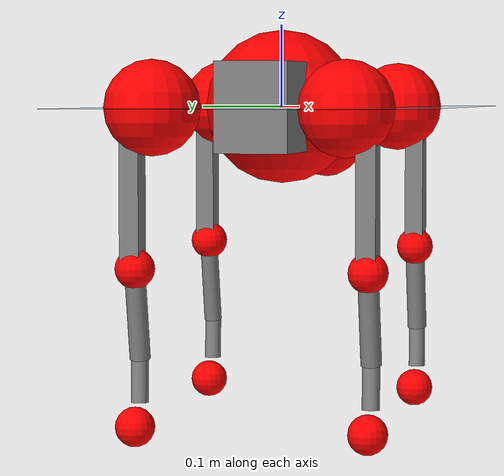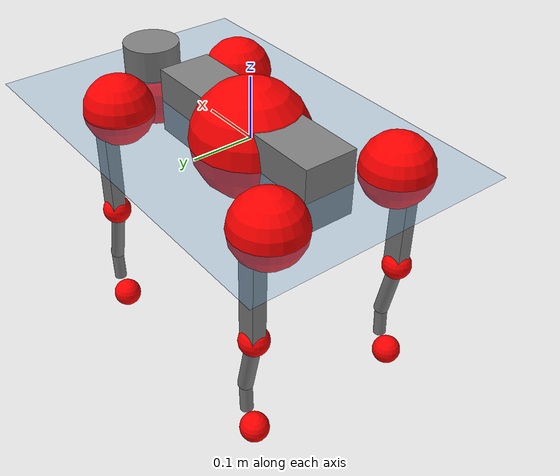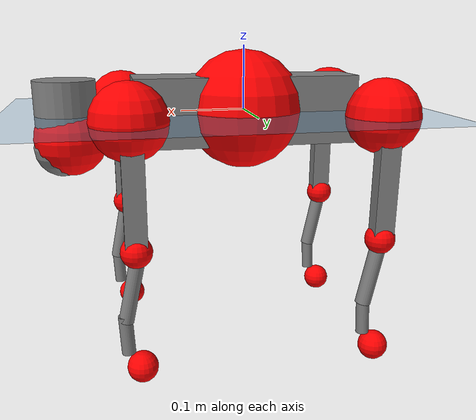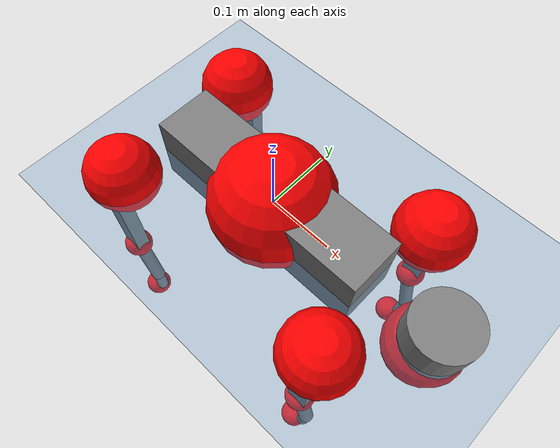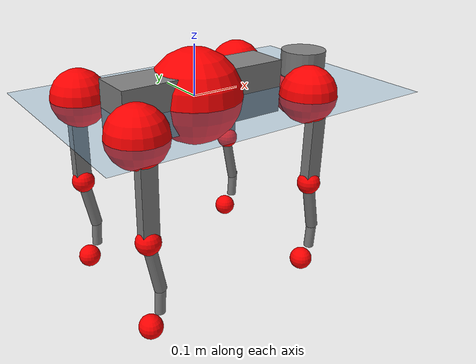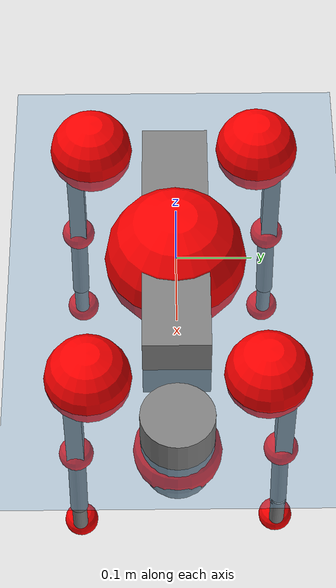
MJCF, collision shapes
<mujoco model="go2">
  <compiler angle="radian" assetdir="assets" balanceinertia="true" inertiafromgeom="false"/>

  <option timestep="0.005" density="1.2" viscosity="2e-05"/>

  <size nkey="1"/>

  <visual>
    <quality shadowsize="8192"/>
    <map shadowclip="0.5"/>
  </visual>

  <default>
    <default class="/">
      <geom contype="0" conaffinity="0" group="1" solref="-1000 -80"/>
      <site size="0.01 0.005 0.005" group="5"/>
      <general forcelimited="true" biastype="affine" gainprm="20" biasprm="0 -20 -0.5"/>
      <default class="go2">
        <joint armature="0.01" damping="0.01" frictionloss="0.2"/>
        <geom condim="1" margin="0.001"/>
        <default class="visual">
          <geom type="mesh" group="2"/>
        </default>
        <default class="collision">
          <geom group="3"/>
          <default class="foot">
            <geom size="0.022 0 0" condim="6" priority="1" friction="0.8 0.02 0.01" solimp="0.015 1 0.022"/>
          </default>
        </default>
        <default class="reward_collision_sphere">
          <geom group="5" rgba="1 0 0 1"/>
        </default>
      </default>
    </default>
  </default>

  <asset>
    <texture type="skybox" colorspace="auto" name="//unnamed_texture_0" builtin="gradient" rgb1="0.95 0.95 0.95" rgb2="0.95 0.95 0.95" width="100" height="600"/>
    <texture type="2d" colorspace="auto" name="texplane" builtin="checker" rgb1="0.345 0.575 0.748" rgb2="0.345 0.575 0.748" markrgb="1 1 1" width="512" height="512"/>
    <material name="MatPlane" class="/" texture="texplane" texuniform="true" texrepeat="2 2" specular="0.9"/>
    <material name="metal" class="/" rgba="0.9 0.95 0.95 1"/>
    <material name="black" class="/" rgba="0 0 0 1"/>
    <material name="white" class="/"/>
    <material name="gray" class="/" rgba="0.671705 0.692426 0.77427 1"/>
    <mesh name="base_0" class="/" file="base_0.obj"/>
    <mesh name="base_1" class="/" file="base_1.obj"/>
    <mesh name="base_2" class="/" file="base_2.obj"/>
    <mesh name="base_3" class="/" file="base_3.obj"/>
    <mesh name="base_4" class="/" file="base_4.obj"/>
    <mesh name="hip_0" class="/" file="hip_0.obj"/>
    <mesh name="hip_1" class="/" file="hip_1.obj"/>
    <mesh name="thigh_0" class="/" file="thigh_0.obj"/>
    <mesh name="thigh_1" class="/" file="thigh_1.obj"/>
    <mesh name="thigh_mirror_0" class="/" file="thigh_mirror_0.obj"/>
    <mesh name="thigh_mirror_1" class="/" file="thigh_mirror_1.obj"/>
    <mesh name="calf_0" class="/" file="calf_0.obj"/>
    <mesh name="calf_1" class="/" file="calf_1.obj"/>
    <mesh name="calf_mirror_0" class="/" file="calf_mirror_0.obj"/>
    <mesh name="calf_mirror_1" class="/" file="calf_mirror_1.obj"/>
    <mesh name="foot" class="/" file="foot.obj"/>
  </asset>

  <worldbody>
    <geom name="floor" class="/" size="100 100 0.125" type="plane" group="0" material="MatPlane"/>
    <light name="toplight_shadow" class="/" pos="0 0 5" dir="0.0990148 0.0990148 -0.990148" type="directional" ambient="0.04 0.04 0.04" diffuse="0.55 0.55 0.55" specular="0.12 0.12 0.12"/>
    <light name="toplight_fill" class="/" pos="0 0 5" dir="0.0990148 0.0990148 -0.990148" type="directional" castshadow="false" ambient="0.04 0.04 0.04" diffuse="0.3 0.3 0.3" specular="0.08 0.08 0.08"/>
    <body name="trunk" childclass="go2" pos="-0.000222983 -0.000622675 0.000440881" quat="1 1.07359e-06 -5.61811e-06 -1.4691e-05">
      <inertial pos="0.0195637 -0.00102792 -0.00457888" quat="-0.0105012 0.714777 -0.00685197 0.69924" mass="5.70278" diaginertia="0.093907 0.0873156 0.0119882"/>
      <joint name="//unnamed_joint_0" type="free" armature="0" damping="0" frictionloss="0"/>
      <geom name="//unnamed_geom_1" class="visual" material="black" mesh="base_0"/>
      <geom name="//unnamed_geom_2" class="visual" material="black" mesh="base_1"/>
      <geom name="//unnamed_geom_3" class="visual" material="black" mesh="base_2"/>
      <geom name="//unnamed_geom_4" class="visual" material="white" mesh="base_3"/>
      <geom name="//unnamed_geom_5" class="visual" material="gray" mesh="base_4"/>
      <geom name="trunk_1" class="collision" size="0.176519 0.0438717 0.0534906" type="box"/>
      <geom name="trunk_2" class="collision" size="0.0469216 0.0422294" pos="0.277186 0 0.00867557" type="cylinder"/>
      <geom name="trunk_3" class="collision" size="0.0441063" pos="0.284967 0 -0.0520534"/>
      <geom name="//unnamed_geom_9" class="reward_collision_sphere" size="0.0938431"/>
      <geom name="//unnamed_geom_10" class="reward_collision_sphere" size="0.0563059" pos="0.272323 0 -0.0390401"/>
      <site name="imu" pos="-0.0225733 -0.00310197 0.0336408" size="0.00938431"/>
      <camera name="track" pos="0 -1.95031 0" quat="0.707107 0.707107 0 0" mode="trackcom"/>
      <camera name="ego_camera" pos="0.303446 0 0.0390401" quat="-0.5 -0.5 0.5 0.5"/>
      <body name="FL_hip" pos="0.1874 0.0476845 0.00281054" quat="1 -0.000134824 -0.000144594 0.000385982">
        <inertial pos="-0.00554326 0.00201759 -0.000709979" quat="0.496519 0.497896 0.505146 0.500395" mass="0.558626" diaginertia="0.000768544 0.000523391 0.000237717"/>
        <joint name="FL_hip_joint" pos="0 0 0" axis="0.999991 0.000418037 0.00427426" stiffness="0.0115736" range="-1.00357 1.03301" armature="0.00937339" damping="0.000386944" frictionloss="0.18723"/>
        <geom name="//unnamed_geom_11" class="visual" material="metal" mesh="hip_0"/>
        <geom name="//unnamed_geom_12" class="visual" material="gray" mesh="hip_1"/>
        <geom name="//unnamed_geom_13" class="collision" size="0.0431678 0.0187686" pos="0 0.0780123 0" quat="0.707107 0.707107 0 0" type="cylinder"/>
        <geom name="//unnamed_geom_14" class="reward_collision_sphere" size="0.0563059" pos="0 0.0682608 0"/>
        <body name="FL_thigh" pos="-0.000959606 0.0950458 0.00229385" quat="1 -4.59276e-05 6.15231e-06 -7.07067e-05">
          <inertial pos="-0.00374306 -0.022 -0.0279318" quat="0.826572 0.0889106 -0.0206933 0.555379" mass="0.952831" diaginertia="0.00520508 0.00513948 0.000435497"/>
          <joint name="FL_thigh_joint" pos="0 0 0" axis="0.000601327 0.999953 0.00963628" stiffness="0.0054815" range="-1.58659 3.52797" armature="0.00981392" damping="0.00903261" frictionloss="0.1785"/>
          <geom name="//unnamed_geom_15" class="visual" material="metal" mesh="thigh_0"/>
          <geom name="//unnamed_geom_16" class="visual" material="gray" mesh="thigh_1"/>
          <geom name="//unnamed_geom_17" class="collision" size="0.0999429 0.0114958 0.0159533" pos="0 0 -0.0923949" quat="0.707107 0 0.707107 0" type="box"/>
          <body name="FL_calf" pos="-6.54242e-05 -0.00252019 -0.18395" quat="1 0.000133219 0.000328918 -9.73511e-05">
            <inertial pos="0.00608372 -0.000466162 -0.124387" quat="0.710016 0.0014492 -0.00398197 0.704172" mass="0.198662" diaginertia="0.00129189 0.00132432 2.55452e-05"/>
            <joint name="FL_calf_joint" pos="0 0 0" axis="-0.000683098 0.999963 -0.00853425" stiffness="0.00194101" range="-2.76486 -0.83615" armature="0.00958199" damping="0.00125211" frictionloss="0.189277"/>
            <geom name="//unnamed_geom_18" class="visual" material="gray" mesh="calf_0"/>
            <geom name="//unnamed_geom_19" class="visual" material="black" mesh="calf_1"/>
            <geom name="FL_calf0" class="collision" size="0.0112612 0.0563059" pos="0.00778066 0 -0.0520534" quat="0.994493 0 -0.104807 0" type="cylinder"/>
            <geom name="//unnamed_geom_21" class="collision" size="0.0103227 0.030499" pos="0.0194516 0 -0.128398" quat="0.999688 0 0.0249974 0" type="cylinder"/>
            <geom name="//unnamed_geom_22" class="visual" pos="0 0 -0.18479" quat="1 0 0 0" material="black" mesh="foot"/>
            <geom name="FL_foot" class="foot" size="0.0179505" pos="-0.00194516 0 -0.18479"/>
            <geom name="//unnamed_geom_24" class="reward_collision_sphere" size="0.0234608"/>
            <geom name="//unnamed_geom_25" class="reward_collision_sphere" size="0.0234608" pos="-0.00194516 0 -0.18479"/>
            <site name="FL_foot" class="foot" pos="-0.00194516 0 -0.18479" size="0.00938431"/>
          </body>
        </body>
      </body>
      <body name="FR_hip" pos="0.188359 -0.044751 -0.00107271" quat="1 -1.2971e-05 1.15156e-05 3.94276e-05">
        <inertial pos="-0.00436063 -0.00135171 -0.00113055" quat="0.498495 0.505648 0.499071 0.49674" mass="0.553712" diaginertia="0.000780331 0.000513159 0.00023938"/>
        <joint name="FR_hip_joint" pos="0 0 0" axis="0.999998 0.000815839 -0.0018001" stiffness="0.00682474" range="-1.04975 1.04525" armature="0.00901753" damping="0.0174985" frictionloss="0.178924"/>
        <geom name="//unnamed_geom_26" class="visual" pos="0 9.37336e-10 4.02043e-08" quat="4.63268e-05 1 0 0" material="metal" mesh="hip_0"/>
        <geom name="//unnamed_geom_27" class="visual" pos="0 1.51953e-09 -9.94405e-08" quat="4.63268e-05 1 0 0" material="gray" mesh="hip_1"/>
        <geom name="//unnamed_geom_28" class="collision" size="0.0431678 0.0187686" pos="0 -0.0780123 0" quat="0.707107 0.707107 0 0" type="cylinder"/>
        <geom name="//unnamed_geom_29" class="reward_collision_sphere" size="0.0563059" pos="0 -0.0682608 0"/>
        <body name="FR_thigh" pos="0.00247733 -0.0911591 0.00213259" quat="1 -0.000303151 -0.000315923 -0.000172725">
          <inertial pos="-0.00269028 0.0197406 -0.0283822" quat="0.553366 -0.0192292 0.0843382 0.828434" mass="0.966386" diaginertia="0.00526645 0.00521529 0.000442846"/>
          <joint name="FR_thigh_joint" pos="0 0 0" axis="-0.000789137 -0.999997 0.00221975" stiffness="0.00240113" range="-3.52891 1.57051" armature="0.00962467" damping="0.0118671" frictionloss="0.187807"/>
          <geom name="//unnamed_geom_30" class="visual" material="metal" mesh="thigh_mirror_0"/>
          <geom name="//unnamed_geom_31" class="visual" material="gray" mesh="thigh_mirror_1"/>
          <geom name="//unnamed_geom_32" class="collision" size="0.0999429 0.0114958 0.0159533" pos="0 0 -0.0923949" quat="0.707107 0 0.707107 0" type="box"/>
          <body name="FR_calf" pos="-0.00175094 0.000298829 -0.184454" quat="1 -0.000313264 0.000520024 0.000207754">
            <inertial pos="0.00504178 0.000703424 -0.123062" quat="0.703367 -0.00374484 0.0033061 0.710809" mass="0.200335" diaginertia="0.00129325 0.00128953 2.58323e-05"/>
            <joint name="FR_calf_joint" pos="0 0 0" axis="-0.00517127 -0.999941 -0.00952489" stiffness="0.00235493" range="0.84374 2.71911" armature="0.0101805" damping="0.0190689" frictionloss="0.176685"/>
            <geom name="//unnamed_geom_33" class="visual" material="gray" mesh="calf_mirror_0"/>
            <geom name="//unnamed_geom_34" class="visual" material="black" mesh="calf_mirror_1"/>
            <geom name="FR_calf0" class="collision" size="0.0121996 0.0563059" pos="0.00972582 0 -0.0520534" quat="0.995004 0 -0.0998334 0" type="cylinder"/>
            <geom name="//unnamed_geom_36" class="collision" size="0.0103227 0.030499" pos="0.0194516 0 -0.128398" quat="0.999688 0 0.0249974 0" type="cylinder"/>
            <geom name="//unnamed_geom_37" class="visual" pos="0 0 -0.18479" quat="1 0 0 0" material="black" mesh="foot"/>
            <geom name="FR_foot" class="foot" size="0.0217686" pos="-0.00194516 0 -0.18479"/>
            <geom name="//unnamed_geom_39" class="reward_collision_sphere" size="0.0234608"/>
            <geom name="//unnamed_geom_40" class="reward_collision_sphere" size="0.0234608" pos="-0.00194516 0 -0.18479"/>
            <site name="FR_foot" class="foot" pos="-0.00194516 0 -0.18479" size="0.00938431"/>
          </body>
        </body>
      </body>
      <body name="RL_hip" pos="-0.188019 0.0452771 -0.000350508" quat="1 1.00504e-05 -6.98782e-05 -3.15836e-05">
        <inertial pos="0.00537347 0.00136292 -0.00042889" quat="0.506737 0.495658 0.498603 0.498934" mass="0.54855" diaginertia="0.000759844 0.00051932 0.000232365"/>
        <joint name="RL_hip_joint" pos="0 0 0" axis="-0.999934 -0.000671881 0.0114392" stiffness="0.00508766" range="-1.0526 1.06673" armature="0.00931586" damping="0.00997826" frictionloss="0.188464"/>
        <geom name="//unnamed_geom_41" class="visual" pos="-9.14932e-10 0 -1.79348e-07" quat="4.63268e-05 0 1 0" material="metal" mesh="hip_0"/>
        <geom name="//unnamed_geom_42" class="visual" pos="-1.48321e-09 0 -1.59056e-07" quat="4.63268e-05 0 1 0" material="gray" mesh="hip_1"/>
        <geom name="//unnamed_geom_43" class="collision" size="0.0431678 0.0187686" pos="0 0.0780123 0" quat="0.707107 0.707107 0 0" type="cylinder"/>
        <geom name="//unnamed_geom_44" class="reward_collision_sphere" size="0.0563059" pos="0 0.0682608 0"/>
        <body name="RL_thigh" pos="0.000206382 0.09267 -0.00162172" quat="1 -1.87005e-05 -3.41809e-06 1.54738e-05">
          <inertial pos="-0.00358012 -0.0221479 -0.0302049" quat="0.829128 0.0836604 -0.0176712 0.552481" mass="0.966525" diaginertia="0.0051444 0.00502341 0.000424225"/>
          <joint name="RL_thigh_joint" pos="0 0 0" axis="0.0035147 0.999969 -0.00699695" range="-0.534158 4.52847" armature="0.00980312" damping="0.00306208" frictionloss="0.183589"/>
          <geom name="//unnamed_geom_45" class="visual" material="metal" mesh="thigh_0"/>
          <geom name="//unnamed_geom_46" class="visual" material="gray" mesh="thigh_1"/>
          <geom name="//unnamed_geom_47" class="collision" size="0.0999429 0.0114958 0.0159533" pos="0 0 -0.0923949" quat="0.707107 0 0.707107 0" type="box"/>
          <body name="RL_calf" pos="0.000117988 -0.00280447 -0.185664" quat="1 -0.000212405 -5.35544e-05 -2.38964e-05">
            <inertial pos="0.00573645 -0.000369396 -0.123074" quat="0.71067 0.00153599 -0.00449646 0.703509" mass="0.197348" diaginertia="0.00131041 0.00128293 2.59199e-05"/>
            <joint name="RL_calf_joint" pos="0 0 0" axis="0.00099793 0.999999 -0.000532715" range="-2.68008 -0.846822" armature="0.00923506" damping="0.00607123" frictionloss="0.189815"/>
            <geom name="//unnamed_geom_48" class="visual" material="gray" mesh="calf_0"/>
            <geom name="//unnamed_geom_49" class="visual" material="black" mesh="calf_1"/>
            <geom name="RL_calf0" class="collision" size="0.0121996 0.0563059" pos="0.00972582 0 -0.0520534" quat="0.995004 0 -0.0998334 0" type="cylinder"/>
            <geom name="//unnamed_geom_51" class="collision" size="0.0103227 0.030499" pos="0.0194516 0 -0.128398" quat="0.999688 0 0.0249974 0" type="cylinder"/>
            <geom name="//unnamed_geom_52" class="visual" pos="0 0 -0.18479" quat="1 0 0 0" material="black" mesh="foot"/>
            <geom name="RL_foot" class="foot" size="0.0170533" pos="-0.00194516 0 -0.18479"/>
            <geom name="//unnamed_geom_54" class="reward_collision_sphere" size="0.0234608"/>
            <geom name="//unnamed_geom_55" class="reward_collision_sphere" size="0.0234608" pos="-0.00194516 0 -0.18479"/>
            <site name="RL_foot" class="foot" pos="-0.00194516 0 -0.18479" size="0.00938431"/>
          </body>
        </body>
      </body>
      <body name="RR_hip" pos="-0.187877 -0.0466094 -0.00117183" quat="1 -0.000440938 -0.000318008 -5.33215e-05">
        <inertial pos="0.00500648 -0.000735464 0.000251925" quat="0.499269 0.495885 0.499482 0.505318" mass="0.555248" diaginertia="0.000768152 0.000515226 0.000239089"/>
        <joint name="RR_hip_joint" pos="0 0 0" axis="-0.999969 -0.000448472 0.00787125" range="-1.05797 1.01599" armature="0.00936188" damping="0.00593006" frictionloss="0.19261"/>
        <geom name="//unnamed_geom_56" class="visual" pos="9.15021e-10 9.37336e-10 -2.19552e-07" quat="2.14617e-09 4.63268e-05 4.63268e-05 -1" material="metal" mesh="hip_0"/>
        <geom name="//unnamed_geom_57" class="visual" pos="1.48299e-09 1.51953e-09 -5.96154e-08" quat="2.14617e-09 4.63268e-05 4.63268e-05 -1" material="gray" mesh="hip_1"/>
        <geom name="//unnamed_geom_58" class="collision" size="0.0431678 0.0187686" pos="0 -0.0780123 0" quat="0.707107 0.707107 0 0" type="cylinder"/>
        <geom name="//unnamed_geom_59" class="reward_collision_sphere" size="0.0563059" pos="0 -0.0682608 0"/>
        <body name="RR_thigh" pos="0.000326747 -0.0928476 -0.00072459" quat="1 -0.000259946 0.000496223 -0.000264555">
          <inertial pos="-0.00352552 0.020259 -0.0288178" quat="0.551269 -0.0201493 0.0850035 0.829742" mass="0.956792" diaginertia="0.00523466 0.00516281 0.00043413"/>
          <joint name="RR_thigh_joint" pos="0 0 0" axis="-0.00534861 -0.999972 -0.00519919" stiffness="0.00192735" range="-4.52958 0.51246" armature="0.00936295" damping="0.0158281" frictionloss="0.189898"/>
          <geom name="//unnamed_geom_60" class="visual" material="metal" mesh="thigh_mirror_0"/>
          <geom name="//unnamed_geom_61" class="visual" material="gray" mesh="thigh_mirror_1"/>
          <geom name="//unnamed_geom_62" class="collision" size="0.0999429 0.0114958 0.0159533" pos="0 0 -0.0923949" quat="0.707107 0 0.707107 0" type="box"/>
          <body name="RR_calf" pos="-0.00185734 -0.000773932 -0.186045" quat="1 -0.000139035 0.000264709 -0.000362089">
            <inertial pos="0.00817734 0.000754053 -0.12268" quat="0.703454 -0.00129668 -0.00226891 0.710736" mass="0.198696" diaginertia="0.00132065 0.0012992 2.60784e-05"/>
            <joint name="RR_calf_joint" pos="0 0 0" axis="-0.00436486 -0.999964 0.00721356" range="0.822488 2.76128" armature="0.00867223" damping="0.00622567" frictionloss="0.187676"/>
            <geom name="//unnamed_geom_63" class="visual" material="gray" mesh="calf_mirror_0"/>
            <geom name="//unnamed_geom_64" class="visual" material="black" mesh="calf_mirror_1"/>
            <geom name="RR_calf0" class="collision" size="0.0121996 0.0563059" pos="0.00972582 0 -0.0520534" quat="0.995004 0 -0.0998334 0" type="cylinder"/>
            <geom name="//unnamed_geom_66" class="collision" size="0.0103227 0.030499" pos="0.0194516 0 -0.128398" quat="0.999688 0 0.0249974 0" type="cylinder"/>
            <geom name="//unnamed_geom_67" class="visual" pos="0 0 -0.18479" quat="1 0 0 0" material="black" mesh="foot"/>
            <geom name="RR_foot" class="foot" size="0.0204587" pos="-0.00194516 0 -0.18479"/>
            <geom name="//unnamed_geom_69" class="reward_collision_sphere" size="0.0234608"/>
            <geom name="//unnamed_geom_70" class="reward_collision_sphere" size="0.0234608" pos="-0.00194516 0 -0.18479"/>
            <site name="RR_foot" class="foot" pos="-0.00194516 0 -0.18479" size="0.00938431"/>
          </body>
        </body>
      </body>
    </body>
  </worldbody>

  <contact>
    <pair class="/" geom1="floor" geom2="FL_foot" name="//unnamed_contact_0"/>
    <pair class="/" geom1="floor" geom2="FR_foot" name="//unnamed_contact_1"/>
    <pair class="/" geom1="floor" geom2="RL_foot" name="//unnamed_contact_2"/>
    <pair class="/" geom1="floor" geom2="RR_foot" name="//unnamed_contact_3"/>
  </contact>

  <actuator>
    <general name="FL_hip" class="/" joint="FL_hip_joint" forcerange="-24.0523 24.0523" gainprm="19.7114" biasprm="0 -19.7114 -0.459847"/>
    <general name="FL_thigh" class="/" joint="FL_thigh_joint" forcerange="-22.4888 22.4888" gainprm="19.7114" biasprm="0 -19.7114 -0.459847"/>
    <general name="FL_calf" class="/" joint="FL_calf_joint" forcerange="-43.5013 43.5013" gainprm="19.7114" biasprm="0 -19.7114 -0.459847"/>
    <general name="FR_hip" class="/" joint="FR_hip_joint" forcerange="-23.6919 23.6919" gainprm="19.7114" biasprm="0 -19.7114 -0.459847"/>
    <general name="FR_thigh" class="/" joint="FR_thigh_joint" forcerange="-23.7118 23.7118" gainprm="19.7114" biasprm="0 -19.7114 -0.459847"/>
    <general name="FR_calf" class="/" joint="FR_calf_joint" forcerange="-42.4707 42.4707" gainprm="19.7114" biasprm="0 -19.7114 -0.459847"/>
    <general name="RL_hip" class="/" joint="RL_hip_joint" forcerange="-22.4679 22.4679" gainprm="19.7114" biasprm="0 -19.7114 -0.459847"/>
    <general name="RL_thigh" class="/" joint="RL_thigh_joint" forcerange="-22.6557 22.6557" gainprm="19.7114" biasprm="0 -19.7114 -0.459847"/>
    <general name="RL_calf" class="/" joint="RL_calf_joint" forcerange="-43.657 43.657" gainprm="19.7114" biasprm="0 -19.7114 -0.459847"/>
    <general name="RR_hip" class="/" joint="RR_hip_joint" forcerange="-20.5554 20.5554" gainprm="19.7114" biasprm="0 -19.7114 -0.459847"/>
    <general name="RR_thigh" class="/" joint="RR_thigh_joint" forcerange="-21.8112 21.8112" gainprm="19.7114" biasprm="0 -19.7114 -0.459847"/>
    <general name="RR_calf" class="/" joint="RR_calf_joint" forcerange="-42.992 42.992" gainprm="19.7114" biasprm="0 -19.7114 -0.459847"/>
  </actuator>

  <sensor>
    <gyro site="imu" name="imu_angular_velocity"/>
    <velocimeter site="imu" name="imu_linear_velocity"/>
    <framelinvel objtype="site" objname="FL_foot" name="FL_foot_global_linear_velocity"/>
    <framelinvel objtype="site" objname="FR_foot" name="FR_foot_global_linear_velocity"/>
    <framelinvel objtype="site" objname="RL_foot" name="RL_foot_global_linear_velocity"/>
    <framelinvel objtype="site" objname="RR_foot" name="RR_foot_global_linear_velocity"/>
  </sensor>

  <keyframe>
    <key name="home" qpos="0 0 0.325 1 0 0 0 0.1 0.8 -1.5 -0.1 -0.8 1.5 -0.1 0.8 -1.5 0.1 -0.8 1.5"/>
  </keyframe>
</mujoco>
